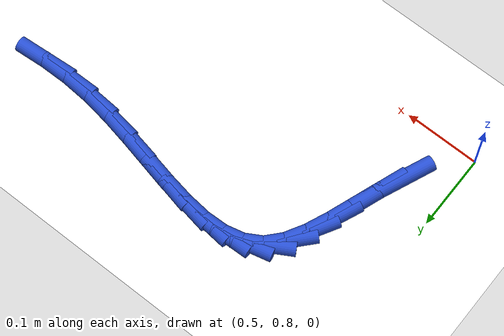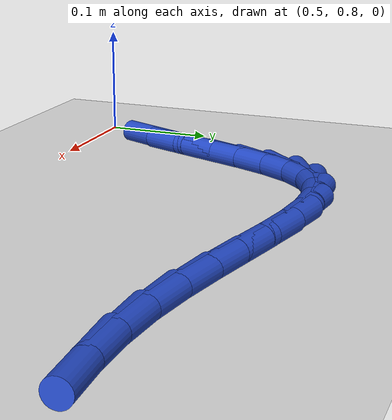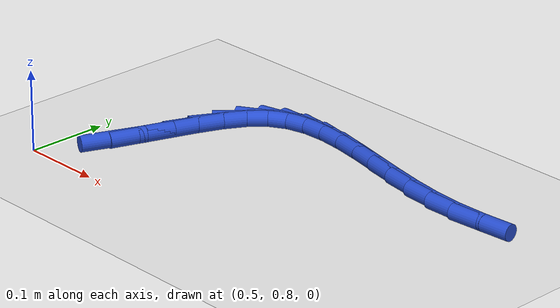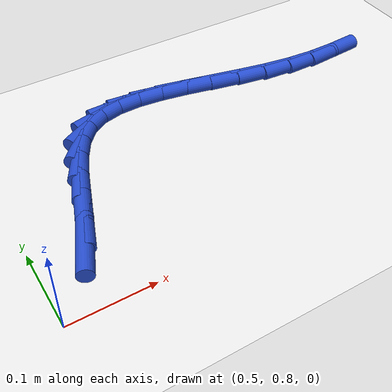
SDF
<sdf version="1.6">
 <world name="default">
  <model name="ground_plane">
   <static>1</static>
   <link name="link">
    <collision name="collision">
     <geometry><plane><normal>0 0 1</normal><size>100 100</size></plane></geometry>
     <surface><friction><ode><mu>100</mu><mu2>50</mu2></ode></friction></surface>
    </collision>
    <visual name="visual">
     <cast_shadows>0</cast_shadows>
     <geometry><plane><normal>0 0 1</normal><size>100 100</size></plane></geometry>
     <material>
      <script><uri>file://media/materials/scripts/gazebo.material</uri><name>Gazebo/WhiteGlow</name></script>
     </material>
    </visual>
   </link>
  </model>
  <model name="line">
   <link name="link_34">
    <pose>0.5545105027063535 0.87325353032112 0.01 0 1.57 1.1747089015676233</pose>
    <collision name="collision">
     <geometry><cylinder><radius>0.01</radius><length>0.08</length></cylinder></geometry>
    </collision>
    <visual name="visual">
     <material>
      <script><name>Gazebo/Blue</name><uri>file://media/materials/scripts/gazebo.material</uri></script>
     </material>
     <geometry><cylinder><radius>0.01</radius><length>0.08</length></cylinder></geometry>
    </visual>
   </link>
   <link name="link_35">
    <pose>0.5679035801349451 0.9052799162093753 0.01 0 1.57 1.2243813752909718</pose>
    <collision name="collision">
     <geometry><cylinder><radius>0.01</radius><length>0.08</length></cylinder></geometry>
    </collision>
    <visual name="visual">
     <material>
      <script><name>Gazebo/Blue</name><uri>file://media/materials/scripts/gazebo.material</uri></script>
     </material>
     <geometry><cylinder><radius>0.01</radius><length>0.08</length></cylinder></geometry>
    </visual>
   </link>
   <link name="link_36">
    <pose>0.5797999211407465 0.9382364126819364 0.01 0 1.57 1.225629661575844</pose>
    <collision name="collision">
     <geometry><cylinder><radius>0.01</radius><length>0.08</length></cylinder></geometry>
    </collision>
    <visual name="visual">
     <material>
      <script><name>Gazebo/Blue</name><uri>file://media/materials/scripts/gazebo.material</uri></script>
     </material>
     <geometry><cylinder><radius>0.01</radius><length>0.08</length></cylinder></geometry>
    </visual>
   </link>
   <link name="link_37">
    <pose>0.5913666746086756 0.9704055348769074 0.01 0 1.57 1.1747361366580582</pose>
    <collision name="collision">
     <geometry><cylinder><radius>0.01</radius><length>0.08</length></cylinder></geometry>
    </collision>
    <visual name="visual">
     <material>
      <script><name>Gazebo/Blue</name><uri>file://media/materials/scripts/gazebo.material</uri></script>
     </material>
     <geometry><cylinder><radius>0.01</radius><length>0.08</length></cylinder></geometry>
    </visual>
   </link>
   <link name="link_38">
    <pose>0.6037709894236507 1.000069797932393 0.01 0 1.57 1.0554872220027178</pose>
    <collision name="collision">
     <geometry><cylinder><radius>0.01</radius><length>0.08</length></cylinder></geometry>
    </collision>
    <visual name="visual">
     <material>
      <script><name>Gazebo/Blue</name><uri>file://media/materials/scripts/gazebo.material</uri></script>
     </material>
     <geometry><cylinder><radius>0.01</radius><length>0.08</length></cylinder></geometry>
    </visual>
   </link>
   <link name="link_39">
    <pose>0.6181800144705891 1.0255117169864971 0.01 0 1.57 0.8371616474907234</pose>
    <collision name="collision">
     <geometry><cylinder><radius>0.01</radius><length>0.08</length></cylinder></geometry>
    </collision>
    <visual name="visual">
     <material>
      <script><name>Gazebo/Blue</name><uri>file://media/materials/scripts/gazebo.material</uri></script>
     </material>
     <geometry><cylinder><radius>0.01</radius><length>0.08</length></cylinder></geometry>
    </visual>
   </link>
   <link name="link_40">
    <pose>0.6357608784219339 1.045013841929786 0.01 0 1.57 0.5207232235269181</pose>
    <collision name="collision">
     <geometry><cylinder><radius>0.01</radius><length>0.08</length></cylinder></geometry>
    </collision>
    <visual name="visual">
     <material>
      <script><name>Gazebo/Blue</name><uri>file://media/materials/scripts/gazebo.material</uri></script>
     </material>
     <geometry><cylinder><radius>0.01</radius><length>0.08</length></cylinder></geometry>
    </visual>
   </link>
   <link name="link_41">
    <pose>0.6573637998049255 1.0574036043592596 0.01 0 1.57 0.2334394201693988</pose>
    <collision name="collision">
     <geometry><cylinder><radius>0.01</radius><length>0.08</length></cylinder></geometry>
    </collision>
    <visual name="visual">
     <material>
      <script><name>Gazebo/Blue</name><uri>file://media/materials/scripts/gazebo.material</uri></script>
     </material>
     <geometry><cylinder><radius>0.01</radius><length>0.08</length></cylinder></geometry>
    </visual>
   </link>
   <link name="link_42">
    <pose>0.6827198645647155 1.0634326244164793 0.01 0 1.57 0.029523971644871052</pose>
    <collision name="collision">
     <geometry><cylinder><radius>0.01</radius><length>0.08</length></cylinder></geometry>
    </collision>
    <visual name="visual">
     <material>
      <script><name>Gazebo/Blue</name><uri>file://media/materials/scripts/gazebo.material</uri></script>
     </material>
     <geometry><cylinder><radius>0.01</radius><length>0.08</length></cylinder></geometry>
    </visual>
   </link>
   <link name="link_43">
    <pose>0.7113132421604051 1.0642770598550158 0.01 0 1.57 -0.100696288666881</pose>
    <collision name="collision">
     <geometry><cylinder><radius>0.01</radius><length>0.08</length></cylinder></geometry>
    </collision>
    <visual name="visual">
     <material>
      <script><name>Gazebo/Blue</name><uri>file://media/materials/scripts/gazebo.material</uri></script>
     </material>
     <geometry><cylinder><radius>0.01</radius><length>0.08</length></cylinder></geometry>
    </visual>
   </link>
   <link name="link_44">
    <pose>0.7426281020510953 1.0611130684284382 0.01 0 1.57 -0.17701109667015702</pose>
    <collision name="collision">
     <geometry><cylinder><radius>0.01</radius><length>0.08</length></cylinder></geometry>
    </collision>
    <visual name="visual">
     <material>
      <script><name>Gazebo/Blue</name><uri>file://media/materials/scripts/gazebo.material</uri></script>
     </material>
     <geometry><cylinder><radius>0.01</radius><length>0.08</length></cylinder></geometry>
    </visual>
   </link>
   <link name="link_45">
    <pose>0.7761486136958874 1.0551168078903184 0.01 0 1.57 -0.2140051350356768</pose>
    <collision name="collision">
     <geometry><cylinder><radius>0.01</radius><length>0.08</length></cylinder></geometry>
    </collision>
    <visual name="visual">
     <material>
      <script><name>Gazebo/Blue</name><uri>file://media/materials/scripts/gazebo.material</uri></script>
     </material>
     <geometry><cylinder><radius>0.01</radius><length>0.08</length></cylinder></geometry>
    </visual>
   </link>
   <link name="link_46">
    <pose>0.8113589465538831 1.0474644359942253 0.01 0 1.57 -0.21989749776022657</pose>
    <collision name="collision">
     <geometry><cylinder><radius>0.01</radius><length>0.08</length></cylinder></geometry>
    </collision>
    <visual name="visual">
     <material>
      <script><name>Gazebo/Blue</name><uri>file://media/materials/scripts/gazebo.material</uri></script>
     </material>
     <geometry><cylinder><radius>0.01</radius><length>0.08</length></cylinder></geometry>
    </visual>
   </link>
   <link name="link_47">
    <pose>0.8477432700841827 1.0393321104937296 0.01 0 1.57 -0.1981125290597783</pose>
    <collision name="collision">
     <geometry><cylinder><radius>0.01</radius><length>0.08</length></cylinder></geometry>
    </collision>
    <visual name="visual">
     <material>
      <script><name>Gazebo/Blue</name><uri>file://media/materials/scripts/gazebo.material</uri></script>
     </material>
     <geometry><cylinder><radius>0.01</radius><length>0.08</length></cylinder></geometry>
    </visual>
   </link>
   <link name="link_48">
    <pose>0.8847857537458882 1.0318959891424015 0.01 0 1.57 -0.14852269965192388</pose>
    <collision name="collision">
     <geometry><cylinder><radius>0.01</radius><length>0.08</length></cylinder></geometry>
    </collision>
    <visual name="visual">
     <material>
      <script><name>Gazebo/Blue</name><uri>file://media/materials/scripts/gazebo.material</uri></script>
     </material>
     <geometry><cylinder><radius>0.01</radius><length>0.08</length></cylinder></geometry>
    </visual>
   </link>
   <link name="link_49">
    <pose>0.9219705669981006 1.026332229693811 0.01 0 1.57 -0.07107353629148604</pose>
    <collision name="collision">
     <geometry><cylinder><radius>0.01</radius><length>0.08</length></cylinder></geometry>
    </collision>
    <visual name="visual">
     <material>
      <script><name>Gazebo/Blue</name><uri>file://media/materials/scripts/gazebo.material</uri></script>
     </material>
     <geometry><cylinder><radius>0.01</radius><length>0.08</length></cylinder></geometry>
    </visual>
   </link>
   <link name="link_50">
    <pose>0.9588096042888374 1.0237095314111273 0.01 0 1.57 0.008771366517076952</pose>
    <collision name="collision">
     <geometry><cylinder><radius>0.01</radius><length>0.08</length></cylinder></geometry>
    </collision>
    <visual name="visual">
     <material>
      <script><name>Gazebo/Blue</name><uri>file://media/materials/scripts/gazebo.material</uri></script>
     </material>
     <geometry><cylinder><radius>0.01</radius><length>0.08</length></cylinder></geometry>
    </visual>
   </link>
   <link name="link_51">
    <pose>0.995090522766423 1.0240277728062113 0.01 0 1.57 0.07406109340477224</pose>
    <collision name="collision">
     <geometry><cylinder><radius>0.01</radius><length>0.08</length></cylinder></geometry>
    </collision>
    <visual name="visual">
     <material>
      <script><name>Gazebo/Blue</name><uri>file://media/materials/scripts/gazebo.material</uri></script>
     </material>
     <geometry><cylinder><radius>0.01</radius><length>0.08</length></cylinder></geometry>
    </visual>
   </link>
  </model>
 </world>
</sdf>
